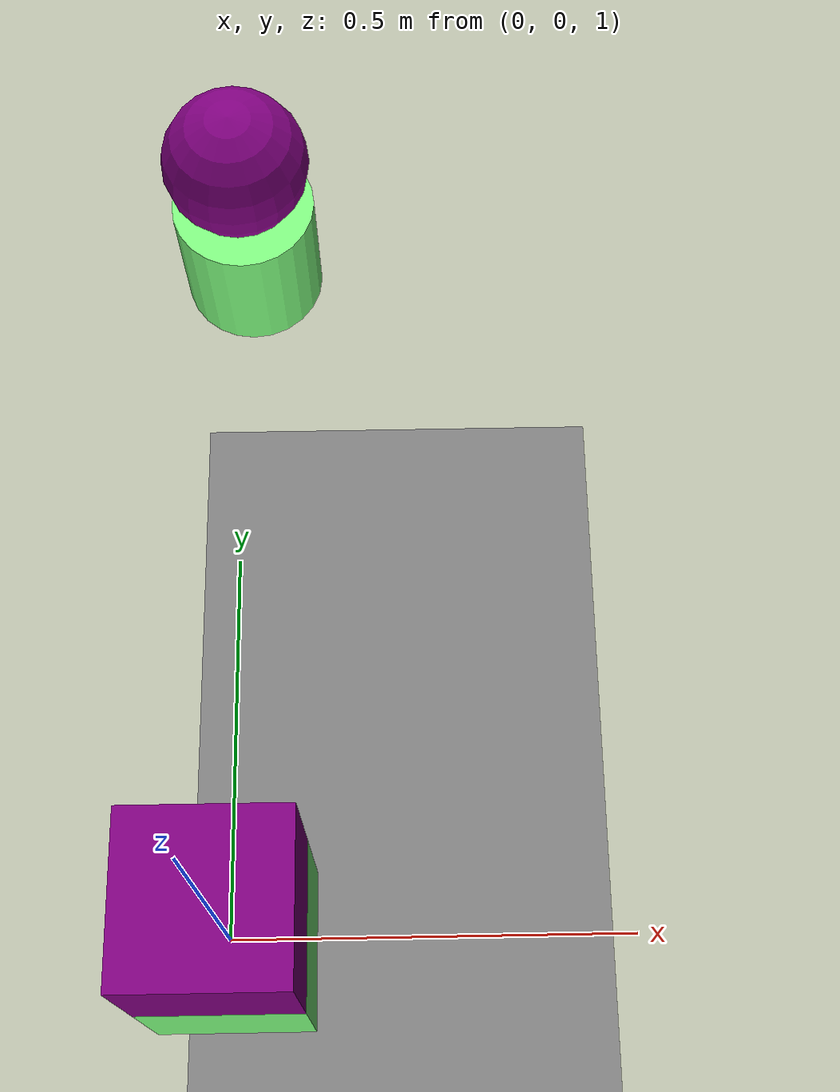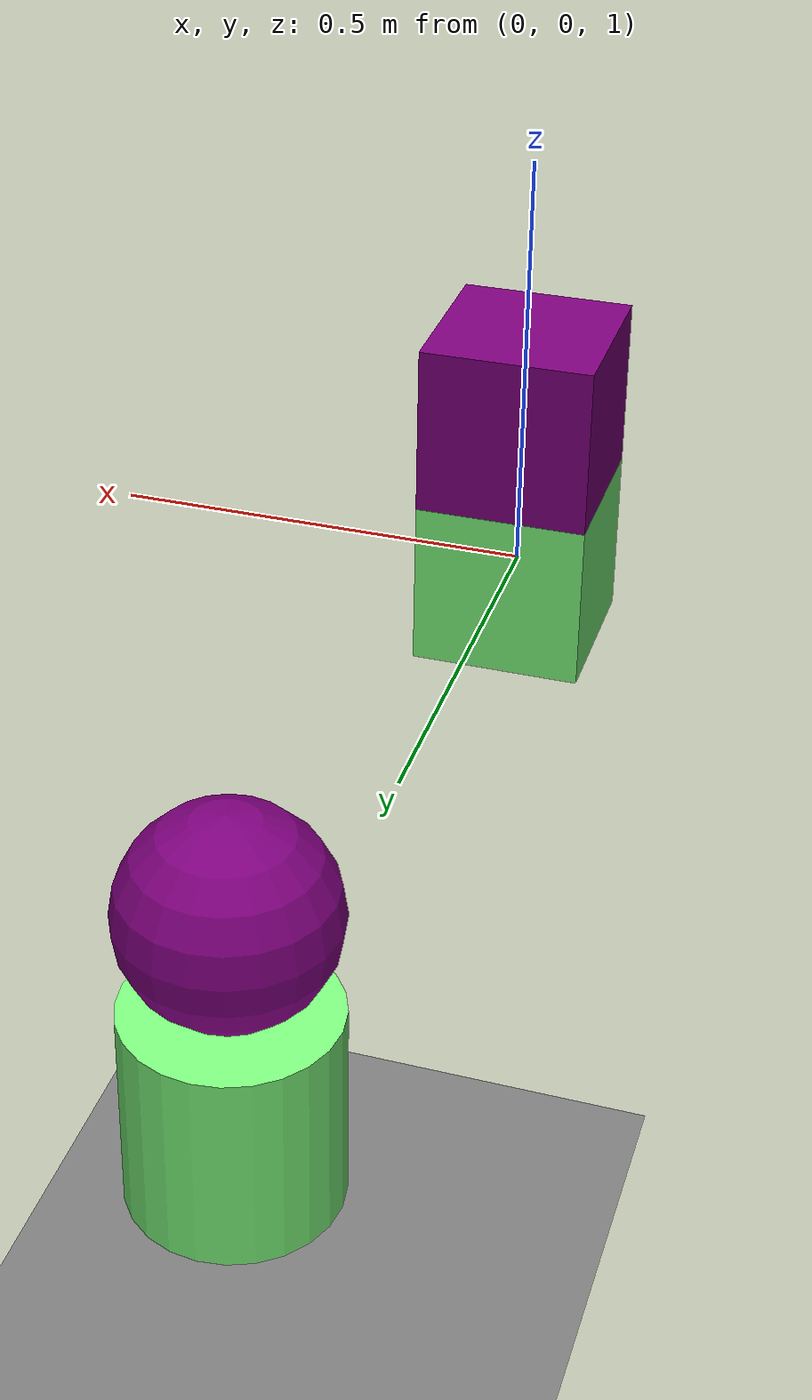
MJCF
<mujoco>
    <asset>
        <mesh name="tetrahedron" vertex="0 0 0 1 0 0 0 1 0 0 0 1" />
        <texture type="skybox" file="../asset/desert.png"
            gridsize="3 4" gridlayout=".U..LFRB.D.." />
        <texture name="plane" type="2d" builtin="checker" rgb1=".1 .1 .1" rgb2=".9 .9 .9"
            width="512" height="512" mark="cross" markrgb=".8 .8 .8" />
        <material name="plane" reflectance="0.3" texture="plane" texrepeat="1 1" texuniform="true" />
        <texture name="y2c" type="cube" builtin="gradient" rgb1="1 1 0" rgb2="0 1 1"
            width="512" height="512" />
        <material name="y2c" reflectance="0.3" texture="y2c" texrepeat="1 1" texuniform="true" />
        <texture name="r2b" type="cube" builtin="gradient" rgb1="1 0 0" rgb2="0 0 1"
            width="512" height="512" />
        <material name="r2b" reflectance="0.3" texture="r2b" texrepeat="1 1" texuniform="true" />
    </asset>
    <default>
        <default class="collision_box">
            <geom type="box" size="0.1 0.1 0.1" contype="1" conaffinity="1" material="y2c" />
        </default>
        <default class="visual_box">
            <geom type="box" size="0.1 0.1 0.1" contype="0" conaffinity="0" material="r2b" />
        </default>
        <default class="collision">
            <geom contype="1" conaffinity="1" material="y2c" />
        </default>
        <default class="visual">
            <geom contype="0" conaffinity="0" material="r2b" />
        </default>
    </default>

    <worldbody>
        <geom name="floor" pos="0 0 0" size="0 0 .25" type="plane" material="plane"
            condim="3" />
        <light directional="true" ambient=".3 .3 .3" pos="30 30 30" dir="0 -.5 -1"
            diffuse=".5 .5 .5" specular=".5 .5 .5" />

        <body pos="0 0 1">
            <freejoint/>
            <geom pos="0 0 0.2" class="visual_box" />
            <geom class="collision_box" />
        </body>

        <body pos="0 1 1">
            <freejoint/>
            <geom type="sphere" size=".1"  pos="0 0 0.2" class="visual" />
            <geom type="cylinder" size=".1 .1 .1" class="collision" />
        </body>

    </worldbody>

</mujoco>
